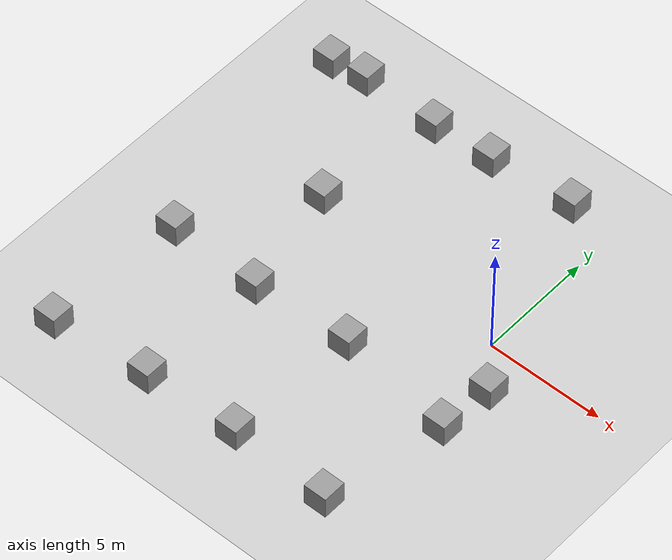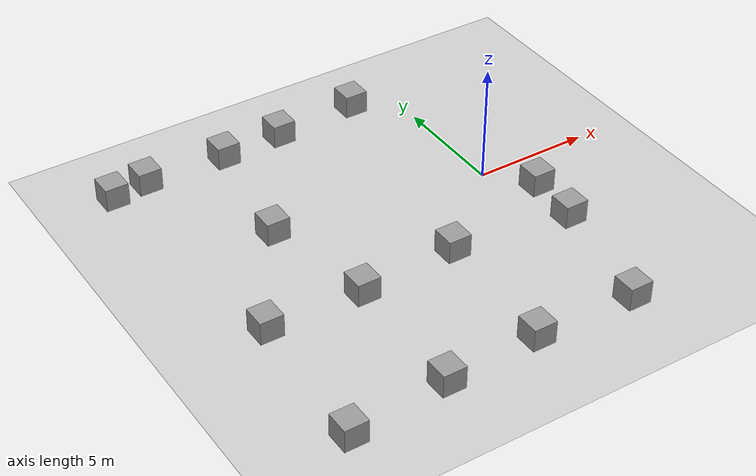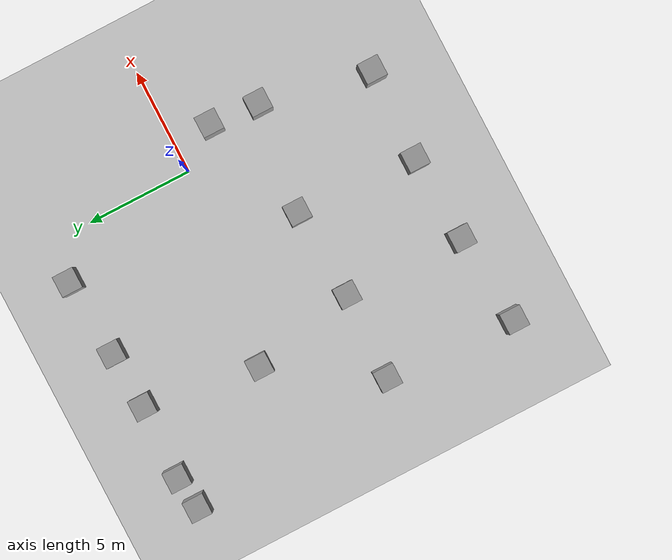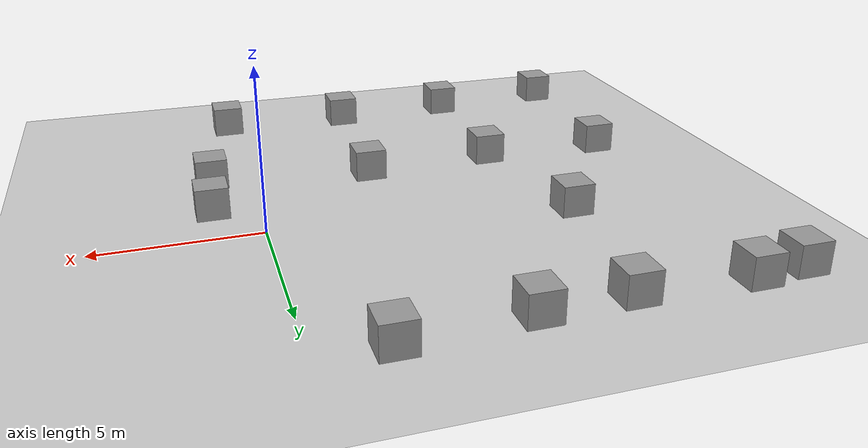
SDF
<sdf version="1.7">
 <world name="world_with_obstacles">
  <model name="ground_plane">
   <static>1</static>
   <link name="link">
    <collision name="collision">
     <geometry><plane><normal>0 0 1</normal><size>100 100</size></plane></geometry>
     <surface>
      <contact><collide_bitmask>65535</collide_bitmask></contact>
      <friction><ode><mu>100</mu><mu2>50</mu2></ode></friction>
     </surface>
    </collision>
    <visual name="visual">
     <cast_shadows>0</cast_shadows>
     <geometry><plane><normal>0 0 1</normal><size>100 100</size></plane></geometry>
     <material>
      <script><uri>file://media/materials/scripts/gazebo.material</uri><name>Gazebo/Grey</name></script>
     </material>
    </visual>
   </link>
  </model>
  <model name="unit_box_6">
   <pose>1.36644 -1.81411 0.5 0 -0 0</pose>
   <link name="link">
    <inertial>
     <mass>1</mass>
     <inertia>
      <ixx>0.166667</ixx>
      <ixy>0</ixy>
      <ixz>0</ixz>
      <iyy>0.166667</iyy>
      <iyz>0</iyz>
      <izz>0.166667</izz>
     </inertia>
    </inertial>
    <collision name="collision"><geometry><box><size>1 1 1</size></box></geometry></collision>
    <visual name="visual">
     <geometry><box><size>1 1 1</size></box></geometry>
     <material>
      <script><name>Gazebo/Grey</name><uri>file://media/materials/scripts/gazebo.material</uri></script>
     </material>
    </visual>
   </link>
  </model>
  <model name="unit_box_9">
   <pose>1.17811 -4.13591 0.5 0 -0 0</pose>
   <link name="link">
    <inertial>
     <mass>1</mass>
     <inertia>
      <ixx>0.166667</ixx>
      <ixy>0</ixy>
      <ixz>0</ixz>
      <iyy>0.166667</iyy>
      <iyz>0</iyz>
      <izz>0.166667</izz>
     </inertia>
    </inertial>
    <collision name="collision"><geometry><box><size>1 1 1</size></box></geometry></collision>
    <visual name="visual">
     <geometry><box><size>1 1 1</size></box></geometry>
     <material>
      <script><name>Gazebo/Grey</name><uri>file://media/materials/scripts/gazebo.material</uri></script>
     </material>
    </visual>
   </link>
  </model>
  <model name="unit_box_10">
   <pose>0.111376 -9.28171 0.5 0 -0 0</pose>
   <link name="link">
    <inertial>
     <mass>1</mass>
     <inertia>
      <ixx>0.166667</ixx>
      <ixy>0</ixy>
      <ixz>0</ixz>
      <iyy>0.166667</iyy>
      <iyz>0</iyz>
      <izz>0.166667</izz>
     </inertia>
    </inertial>
    <collision name="collision"><geometry><box><size>1 1 1</size></box></geometry></collision>
    <visual name="visual">
     <geometry><box><size>1 1 1</size></box></geometry>
     <material>
      <script><name>Gazebo/Grey</name><uri>file://media/materials/scripts/gazebo.material</uri></script>
     </material>
    </visual>
   </link>
  </model>
  <model name="unit_box_11">
   <pose>-4.21878 -9.15491 0.5 0 -0 0</pose>
   <link name="link">
    <inertial>
     <mass>1</mass>
     <inertia>
      <ixx>0.166667</ixx>
      <ixy>0</ixy>
      <ixz>0</ixz>
      <iyy>0.166667</iyy>
      <iyz>0</iyz>
      <izz>0.166667</izz>
     </inertia>
    </inertial>
    <collision name="collision"><geometry><box><size>1 1 1</size></box></geometry></collision>
    <visual name="visual">
     <geometry><box><size>1 1 1</size></box></geometry>
     <material>
      <script><name>Gazebo/Grey</name><uri>file://media/materials/scripts/gazebo.material</uri></script>
     </material>
    </visual>
   </link>
  </model>
  <model name="unit_box_12">
   <pose>-3.90491 -3.44432 0.5 0 -0 0</pose>
   <link name="link">
    <inertial>
     <mass>1</mass>
     <inertia>
      <ixx>0.166667</ixx>
      <ixy>0</ixy>
      <ixz>0</ixz>
      <iyy>0.166667</iyy>
      <iyz>0</iyz>
      <izz>0.166667</izz>
     </inertia>
    </inertial>
    <collision name="collision"><geometry><box><size>1 1 1</size></box></geometry></collision>
    <visual name="visual">
     <geometry><box><size>1 1 1</size></box></geometry>
     <material>
      <script><name>Gazebo/Grey</name><uri>file://media/materials/scripts/gazebo.material</uri></script>
     </material>
    </visual>
   </link>
  </model>
  <model name="unit_box_13">
   <pose>-12.2512 -3.57091 0.5 0 -0 0</pose>
   <link name="link">
    <inertial>
     <mass>1</mass>
     <inertia>
      <ixx>0.166667</ixx>
      <ixy>0</ixy>
      <ixz>0</ixz>
      <iyy>0.166667</iyy>
      <iyz>0</iyz>
      <izz>0.166667</izz>
     </inertia>
    </inertial>
    <collision name="collision"><geometry><box><size>1 1 1</size></box></geometry></collision>
    <visual name="visual">
     <geometry><box><size>1 1 1</size></box></geometry>
     <material>
      <script><name>Gazebo/Grey</name><uri>file://media/materials/scripts/gazebo.material</uri></script>
     </material>
    </visual>
   </link>
  </model>
  <model name="unit_box_14">
   <pose>-12.565 -9.71971 0.5 0 -0 0</pose>
   <link name="link">
    <inertial>
     <mass>1</mass>
     <inertia>
      <ixx>0.166667</ixx>
      <ixy>0</ixy>
      <ixz>0</ixz>
      <iyy>0.166667</iyy>
      <iyz>0</iyz>
      <izz>0.166667</izz>
     </inertia>
    </inertial>
    <collision name="collision"><geometry><box><size>1 1 1</size></box></geometry></collision>
    <visual name="visual">
     <geometry><box><size>1 1 1</size></box></geometry>
     <material>
      <script><name>Gazebo/Grey</name><uri>file://media/materials/scripts/gazebo.material</uri></script>
     </material>
    </visual>
   </link>
  </model>
  <model name="unit_box_15">
   <pose>-8.17221 -3.69611 0.5 0 -0 0</pose>
   <link name="link">
    <inertial>
     <mass>1</mass>
     <inertia>
      <ixx>0.166667</ixx>
      <ixy>0</ixy>
      <ixz>0</ixz>
      <iyy>0.166667</iyy>
      <iyz>0</iyz>
      <izz>0.166667</izz>
     </inertia>
    </inertial>
    <collision name="collision"><geometry><box><size>1 1 1</size></box></geometry></collision>
    <visual name="visual">
     <geometry><box><size>1 1 1</size></box></geometry>
     <material>
      <script><name>Gazebo/Grey</name><uri>file://media/materials/scripts/gazebo.material</uri></script>
     </material>
    </visual>
   </link>
  </model>
  <model name="unit_box_16">
   <pose>-8.29776 -9.34411 0.5 0 -0 0</pose>
   <link name="link">
    <inertial>
     <mass>1</mass>
     <inertia>
      <ixx>0.166667</ixx>
      <ixy>0</ixy>
      <ixz>0</ixz>
      <iyy>0.166667</iyy>
      <iyz>0</iyz>
      <izz>0.166667</izz>
     </inertia>
    </inertial>
    <collision name="collision"><geometry><box><size>1 1 1</size></box></geometry></collision>
    <visual name="visual">
     <geometry><box><size>1 1 1</size></box></geometry>
     <material>
      <script><name>Gazebo/Grey</name><uri>file://media/materials/scripts/gazebo.material</uri></script>
     </material>
    </visual>
   </link>
  </model>
  <model name="unit_box_17">
   <pose>-5.66208 6.72208 0.5 0 -0 0</pose>
   <link name="link">
    <inertial>
     <mass>1</mass>
     <inertia>
      <ixx>0.166667</ixx>
      <ixy>0</ixy>
      <ixz>0</ixz>
      <iyy>0.166667</iyy>
      <iyz>0</iyz>
      <izz>0.166667</izz>
     </inertia>
    </inertial>
    <collision name="collision"><geometry><box><size>1 1 1</size></box></geometry></collision>
    <visual name="visual">
     <geometry><box><size>1 1 1</size></box></geometry>
     <material>
      <script><name>Gazebo/Grey</name><uri>file://media/materials/scripts/gazebo.material</uri></script>
     </material>
    </visual>
   </link>
  </model>
  <model name="unit_box_18">
   <pose>-8.36045 6.59549 0.5 0 -0 0</pose>
   <link name="link">
    <inertial>
     <mass>1</mass>
     <inertia>
      <ixx>0.166667</ixx>
      <ixy>0</ixy>
      <ixz>0</ixz>
      <iyy>0.166667</iyy>
      <iyz>0</iyz>
      <izz>0.166667</izz>
     </inertia>
    </inertial>
    <collision name="collision"><geometry><box><size>1 1 1</size></box></geometry></collision>
    <visual name="visual">
     <geometry><box><size>1 1 1</size></box></geometry>
     <material>
      <script><name>Gazebo/Grey</name><uri>file://media/materials/scripts/gazebo.material</uri></script>
     </material>
    </visual>
   </link>
  </model>
  <model name="unit_box_19">
   <pose>-1.95967 6.97387 0.5 0 -0 0</pose>
   <link name="link">
    <inertial>
     <mass>1</mass>
     <inertia>
      <ixx>0.166667</ixx>
      <ixy>0</ixy>
      <ixz>0</ixz>
      <iyy>0.166667</iyy>
      <iyz>0</iyz>
      <izz>0.166667</izz>
     </inertia>
    </inertial>
    <collision name="collision"><geometry><box><size>1 1 1</size></box></geometry></collision>
    <visual name="visual">
     <geometry><box><size>1 1 1</size></box></geometry>
     <material>
      <script><name>Gazebo/Grey</name><uri>file://media/materials/scripts/gazebo.material</uri></script>
     </material>
    </visual>
   </link>
  </model>
  <model name="unit_box_20">
   <pose>-11.8747 6.72208 0.5 0 -0 0</pose>
   <link name="link">
    <inertial>
     <mass>1</mass>
     <inertia>
      <ixx>0.166667</ixx>
      <ixy>0</ixy>
      <ixz>0</ixz>
      <iyy>0.166667</iyy>
      <iyz>0</iyz>
      <izz>0.166667</izz>
     </inertia>
    </inertial>
    <collision name="collision"><geometry><box><size>1 1 1</size></box></geometry></collision>
    <visual name="visual">
     <geometry><box><size>1 1 1</size></box></geometry>
     <material>
      <script><name>Gazebo/Grey</name><uri>file://media/materials/scripts/gazebo.material</uri></script>
     </material>
    </visual>
   </link>
  </model>
  <model name="unit_box_21">
   <pose>-13.4436 6.53289 0.5 0 -0 0</pose>
   <link name="link">
    <inertial>
     <mass>1</mass>
     <inertia>
      <ixx>0.166667</ixx>
      <ixy>0</ixy>
      <ixz>0</ixz>
      <iyy>0.166667</iyy>
      <iyz>0</iyz>
      <izz>0.166667</izz>
     </inertia>
    </inertial>
    <collision name="collision"><geometry><box><size>1 1 1</size></box></geometry></collision>
    <visual name="visual">
     <geometry><box><size>1 1 1</size></box></geometry>
     <material>
      <script><name>Gazebo/Grey</name><uri>file://media/materials/scripts/gazebo.material</uri></script>
     </material>
    </visual>
   </link>
  </model>
  <model name="unit_box_22">
   <pose>-9.17617 1.19928 0.5 0 -0 0</pose>
   <link name="link">
    <inertial>
     <mass>1</mass>
     <inertia>
      <ixx>0.166667</ixx>
      <ixy>0</ixy>
      <ixz>0</ixz>
      <iyy>0.166667</iyy>
      <iyz>0</iyz>
      <izz>0.166667</izz>
     </inertia>
    </inertial>
    <collision name="collision"><geometry><box><size>1 1 1</size></box></geometry></collision>
    <visual name="visual">
     <geometry><box><size>1 1 1</size></box></geometry>
     <material>
      <script><name>Gazebo/Grey</name><uri>file://media/materials/scripts/gazebo.material</uri></script>
     </material>
    </visual>
   </link>
  </model>
 </world>
</sdf>
